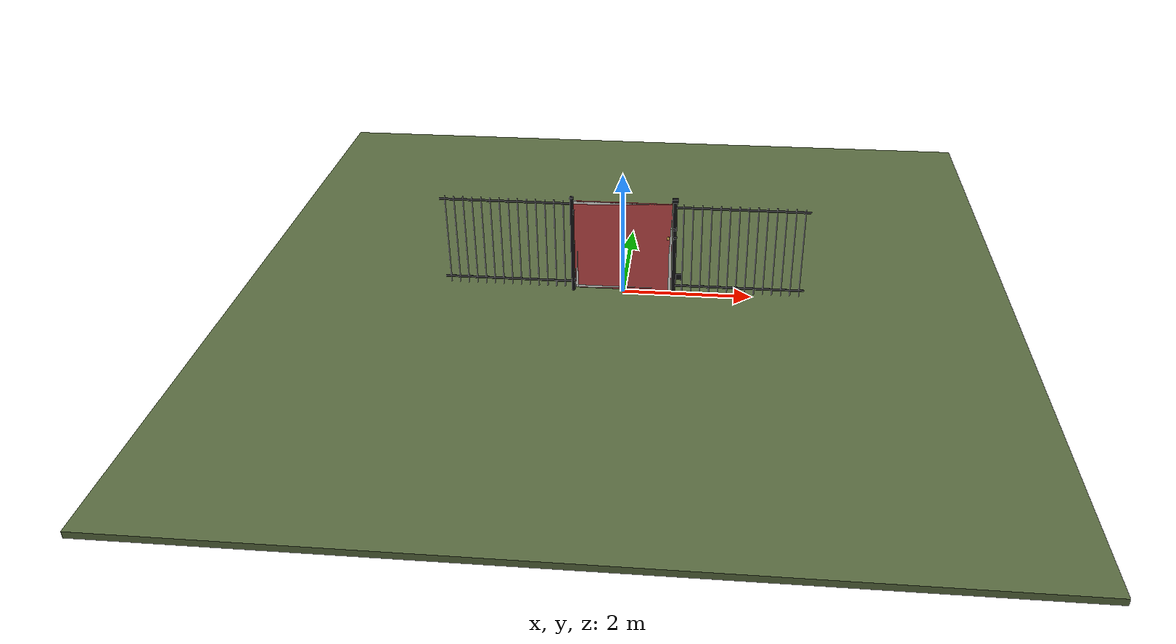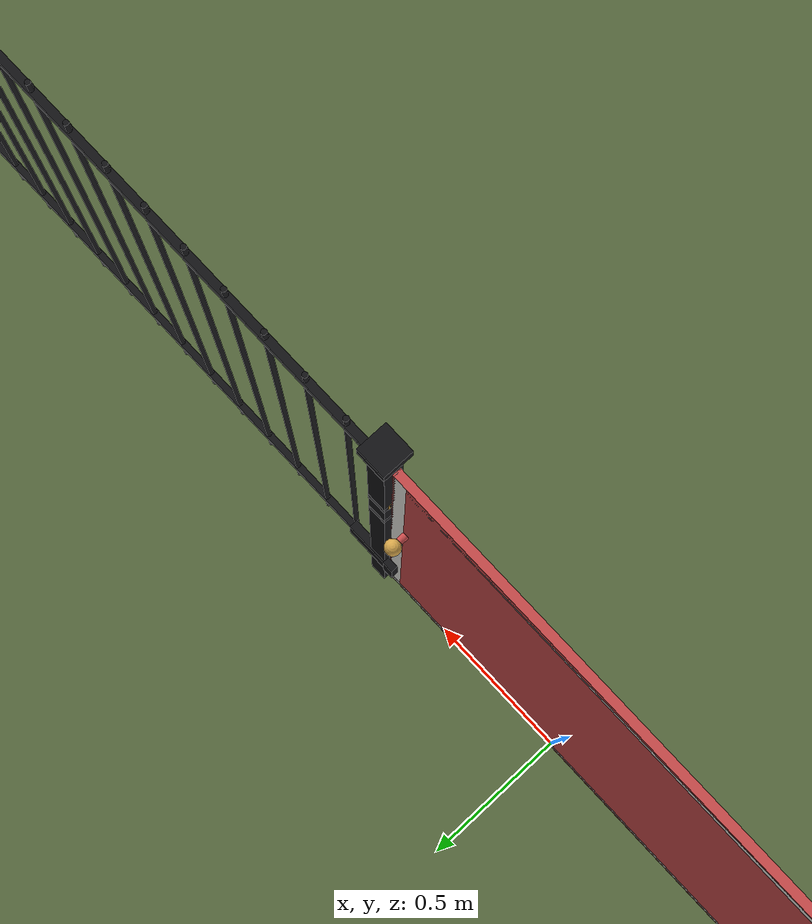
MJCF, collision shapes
<?xml version="1.0" ?>
<mujoco model="db0931_gate_swing_full">
  <compiler angle="radian" meshdir="../../hardware" texturedir="../../textures" autolimits="true" inertiafromgeom="false"/>
  <option timestep="0.002" integrator="implicitfast" cone="elliptic" impratio="10" noslip_iterations="3">
    <flag multiccd="enable"/>
  </option>
  <size memory="16M"/>
  <default>
    <geom condim="4" solref="0.005 1" solimp="0.95 0.99 0.001"/>
    <joint solreflimit="0.005 1" solimplimit="0.95 0.99 0.001"/>
    <tendon solreflimit="0.005 1"/>
    <equality solref="0.002 1"/>
  </default>
  <visual>
    <headlight ambient="0.4 0.4 0.4" diffuse="0.7 0.7 0.7" specular="0.2 0.2 0.2"/>
    <quality shadowsize="4096"/>
    <map znear="0.01" zfar="60"/>
  </visual>
  <asset>
    <mesh name="cyl_face_e9e5036966" file="cyl_face_e9e5036966.obj"/>
    <mesh name="knob_d1888f6f03" file="knob_d1888f6f03.obj"/>
    <mesh name="strap_hinge_118b895b75" file="strap_hinge_118b895b75.obj"/>
    <material name="mat_floor" rgba="0.35 0.42 0.25 1" specular="0.2" shininess="0.15" reflectance="0"/>
    <material name="mat_wall" rgba="0.78 0.76 0.7 1" specular="0.2" shininess="0.1" reflectance="0"/>
    <material name="mat_leaf" rgba="0.93 0.93 0.91 1" specular="0.23" shininess="0.3" reflectance="0.02"/>
    <material name="mat_hinge" rgba="0.65 0.66 0.68 1" specular="0.74" shininess="0.5" reflectance="0.36"/>
    <material name="mat_op_brass" rgba="0.85 0.66 0.3 1" specular="0.8" shininess="0.75" reflectance="0.4"/>
    <material name="mat_trim" rgba="0.85 0.66 0.3 1" specular="0.8" shininess="0.75" reflectance="0.4"/>
    <material name="mat_bolt" rgba="0.75 0.76 0.77 1" specular="0.8" shininess="0.65" reflectance="0.4"/>
    <material name="mat_deadbolt" rgba="0.85 0.66 0.3 1" specular="0.8" shininess="0.75" reflectance="0.4"/>
    <material name="mat_frame" rgba="0.08 0.08 0.09 1" specular="0.56" shininess="0.25" reflectance="0.24"/>
    <texture name="skybox" type="skybox" builtin="gradient" rgb1="0.6 0.7 0.85" rgb2="0.9 0.92 0.95" width="256" height="256"/>
  </asset>
  <worldbody>
    <light name="sun" pos="1.5 -2.5 4" dir="-0.3 0.5 -0.8" directional="true" diffuse="0.8 0.8 0.8" specular="0.3 0.3 0.3" castshadow="true"/>
    <light name="fill" pos="-1.5 2.5 3" dir="0.3 -0.5 -0.7" directional="true" diffuse="0.35 0.35 0.4" castshadow="false"/>
    <camera name="robot_view" pos="0 -2.05 1.334" xyaxes="1 0 0 0 0.26963 0.962964" fovy="52"/>
    <camera name="far_view" pos="0 2.05 1.334" xyaxes="-1 0 0 0 -0.26963 0.962964" fovy="52"/>
    <camera name="iso" pos="1.558 -1.722 1.662" xyaxes="0.741536 0.670913 0 -0.242917 0.268487 0.932151" fovy="46"/>
    <camera name="detail_handle" pos="0.872 -0.859 1.28" xyaxes="0.97561 0.219512 0 -0.070934 0.315262 0.94635" fovy="38"/>
    <geom name="floor" type="box" size="6 6 0.05" pos="0 0 -0.05" material="mat_floor" group="0" contype="1" conaffinity="1" friction="0.8 0.005 0.0001" density="2400"/>
    <geom name="hinge_pintle_0" type="cylinder" size="0.008 0.02" pos="-0.753 -0.05 0.174" material="mat_hinge" group="1" contype="0" conaffinity="0" density="7850"/>
    <geom name="hinge_pintle_1" type="cylinder" size="0.008 0.02" pos="-0.753 -0.05 1.374" material="mat_hinge" group="1" contype="0" conaffinity="0" density="7850"/>
    <geom name="leaf_deadbolt_strike_b" type="box" size="0.0155 0.003 0.0005" pos="0.7555 0 1.1215" quat="-0.5 -0.5 0.5 0.5" material="mat_deadbolt" group="1" contype="0" conaffinity="0" density="7800"/>
    <geom name="leaf_deadbolt_strike_l" type="box" size="0.003 0.0155 0.0005" pos="0.7555 0.0125 1.14" quat="-0.5 -0.5 0.5 0.5" material="mat_deadbolt" group="1" contype="0" conaffinity="0" density="7800"/>
    <geom name="leaf_deadbolt_strike_t" type="box" size="0.0155 0.003 0.0005" pos="0.7555 0 1.1585" quat="-0.5 -0.5 0.5 0.5" material="mat_deadbolt" group="1" contype="0" conaffinity="0" density="7800"/>
    <geom name="leaf_deadbolt_strike_r" type="box" size="0.003 0.0155 0.0005" pos="0.7555 -0.0125 1.14" quat="-0.5 -0.5 0.5 0.5" material="mat_deadbolt" group="1" contype="0" conaffinity="0" density="7800"/>
    <geom name="post_hinge" type="cylinder" size="0.03 0.8" pos="-0.786 0 0.8" material="mat_frame" group="0" contype="1" conaffinity="1" friction="0.6 0.005 0.0001" density="800"/>
    <geom name="post_hinge_cap" type="sphere" size="0.03" pos="-0.786 0 1.6" material="mat_frame" group="1" contype="0" conaffinity="0" density="800"/>
    <geom name="post_1000_wall_n" type="box" size="0.03 0.01175 0.015" pos="0.786 0.01825 1" material="mat_frame" group="0" contype="1" conaffinity="1" friction="0.6 0.005 0.0001" density="800"/>
    <geom name="post_1000_wall_p" type="box" size="0.03 0.008 0.015" pos="0.786 -0.0145 1" material="mat_frame" group="0" contype="1" conaffinity="1" friction="0.6 0.005 0.0001" density="800"/>
    <geom name="post_1000_ramp" type="box" size="0.03 0.016771 0.015" pos="0.790333 -0.024084 1" quat="0.973249 0 0 0.229753" material="mat_frame" group="0" contype="1" conaffinity="1" friction="0.12 0.005 0.0001" density="800"/>
    <geom name="post_1000_back" type="box" size="0.021 0.0065 0.015" pos="0.795 0 1" material="mat_frame" group="0" contype="1" conaffinity="1" friction="0.6 0.005 0.0001" density="800"/>
    <geom name="post_1140_wall_n" type="box" size="0.03 0.01025 0.0155" pos="0.786 0.01975 1.14" material="mat_frame" group="0" contype="1" conaffinity="1" friction="0.6 0.005 0.0001" density="800"/>
    <geom name="post_1140_wall_p" type="box" size="0.03 0.01025 0.0155" pos="0.786 -0.01975 1.14" material="mat_frame" group="0" contype="1" conaffinity="1" friction="0.6 0.005 0.0001" density="800"/>
    <geom name="post_1140_back" type="box" size="0.0153 0.0095 0.0155" pos="0.8007 0 1.14" material="mat_frame" group="0" contype="1" conaffinity="1" friction="0.6 0.005 0.0001" density="800"/>
    <geom name="post_latch_0" type="box" size="0.03 0.03 0.4925" pos="0.786 0 0.4925" material="mat_frame" group="0" contype="1" conaffinity="1" friction="0.6 0.005 0.0001" density="800"/>
    <geom name="post_latch_1" type="box" size="0.03 0.03 0.05475" pos="0.786 0 1.06975" material="mat_frame" group="0" contype="1" conaffinity="1" friction="0.6 0.005 0.0001" density="800"/>
    <geom name="post_latch_2" type="box" size="0.03 0.03 0.22225" pos="0.786 0 1.37775" material="mat_frame" group="0" contype="1" conaffinity="1" friction="0.6 0.005 0.0001" density="800"/>
    <geom name="post_latch_cap" type="box" size="0.045 0.045 0.02" pos="0.786 0 1.62" material="mat_frame" group="1" contype="0" conaffinity="0" density="800"/>
    <geom name="gate_stop" type="box" size="0.02 0.012 0.06" pos="0.736 0.0245 0.3" material="mat_frame" group="0" contype="1" conaffinity="1" friction="0.6 0.005 0.0001" density="800"/>
    <geom name="fence_bar_l_0" type="cylinder" size="0.008 0.75" pos="-0.916 0 0.8" material="mat_frame" group="0" contype="1" conaffinity="1" friction="0.6 0.005 0.0001" density="7850"/>
    <geom name="fence_bar_l_1" type="cylinder" size="0.008 0.75" pos="-1.056 0 0.8" material="mat_frame" group="0" contype="1" conaffinity="1" friction="0.6 0.005 0.0001" density="7850"/>
    <geom name="fence_bar_l_2" type="cylinder" size="0.008 0.75" pos="-1.196 0 0.8" material="mat_frame" group="0" contype="1" conaffinity="1" friction="0.6 0.005 0.0001" density="7850"/>
    <geom name="fence_bar_l_3" type="cylinder" size="0.008 0.75" pos="-1.336 0 0.8" material="mat_frame" group="0" contype="1" conaffinity="1" friction="0.6 0.005 0.0001" density="7850"/>
    <geom name="fence_bar_l_4" type="cylinder" size="0.008 0.75" pos="-1.476 0 0.8" material="mat_frame" group="0" contype="1" conaffinity="1" friction="0.6 0.005 0.0001" density="7850"/>
    <geom name="fence_bar_l_5" type="cylinder" size="0.008 0.75" pos="-1.616 0 0.8" material="mat_frame" group="0" contype="1" conaffinity="1" friction="0.6 0.005 0.0001" density="7850"/>
    <geom name="fence_bar_l_6" type="cylinder" size="0.008 0.75" pos="-1.756 0 0.8" material="mat_frame" group="0" contype="1" conaffinity="1" friction="0.6 0.005 0.0001" density="7850"/>
    <geom name="fence_bar_l_7" type="cylinder" size="0.008 0.75" pos="-1.896 0 0.8" material="mat_frame" group="0" contype="1" conaffinity="1" friction="0.6 0.005 0.0001" density="7850"/>
    <geom name="fence_bar_l_8" type="cylinder" size="0.008 0.75" pos="-2.036 0 0.8" material="mat_frame" group="0" contype="1" conaffinity="1" friction="0.6 0.005 0.0001" density="7850"/>
    <geom name="fence_bar_l_9" type="cylinder" size="0.008 0.75" pos="-2.176 0 0.8" material="mat_frame" group="0" contype="1" conaffinity="1" friction="0.6 0.005 0.0001" density="7850"/>
    <geom name="fence_bar_l_10" type="cylinder" size="0.008 0.75" pos="-2.316 0 0.8" material="mat_frame" group="0" contype="1" conaffinity="1" friction="0.6 0.005 0.0001" density="7850"/>
    <geom name="fence_bar_l_11" type="cylinder" size="0.008 0.75" pos="-2.456 0 0.8" material="mat_frame" group="0" contype="1" conaffinity="1" friction="0.6 0.005 0.0001" density="7850"/>
    <geom name="fence_bar_l_12" type="cylinder" size="0.008 0.75" pos="-2.596 0 0.8" material="mat_frame" group="0" contype="1" conaffinity="1" friction="0.6 0.005 0.0001" density="7850"/>
    <geom name="fence_bar_l_13" type="cylinder" size="0.008 0.75" pos="-2.736 0 0.8" material="mat_frame" group="0" contype="1" conaffinity="1" friction="0.6 0.005 0.0001" density="7850"/>
    <geom name="fence_rail_l" type="box" size="1 0.012 0.012" pos="-1.816 0 1.5" material="mat_frame" group="0" contype="1" conaffinity="1" friction="0.6 0.005 0.0001" density="7850"/>
    <geom name="fence_rail_b_l" type="box" size="1 0.012 0.012" pos="-1.816 0 0.15" material="mat_frame" group="0" contype="1" conaffinity="1" friction="0.6 0.005 0.0001" density="7850"/>
    <geom name="fence_bar_r_0" type="cylinder" size="0.008 0.75" pos="0.916 0 0.8" material="mat_frame" group="0" contype="1" conaffinity="1" friction="0.6 0.005 0.0001" density="7850"/>
    <geom name="fence_bar_r_1" type="cylinder" size="0.008 0.75" pos="1.056 0 0.8" material="mat_frame" group="0" contype="1" conaffinity="1" friction="0.6 0.005 0.0001" density="7850"/>
    <geom name="fence_bar_r_2" type="cylinder" size="0.008 0.75" pos="1.196 0 0.8" material="mat_frame" group="0" contype="1" conaffinity="1" friction="0.6 0.005 0.0001" density="7850"/>
    <geom name="fence_bar_r_3" type="cylinder" size="0.008 0.75" pos="1.336 0 0.8" material="mat_frame" group="0" contype="1" conaffinity="1" friction="0.6 0.005 0.0001" density="7850"/>
    <geom name="fence_bar_r_4" type="cylinder" size="0.008 0.75" pos="1.476 0 0.8" material="mat_frame" group="0" contype="1" conaffinity="1" friction="0.6 0.005 0.0001" density="7850"/>
    <geom name="fence_bar_r_5" type="cylinder" size="0.008 0.75" pos="1.616 0 0.8" material="mat_frame" group="0" contype="1" conaffinity="1" friction="0.6 0.005 0.0001" density="7850"/>
    <geom name="fence_bar_r_6" type="cylinder" size="0.008 0.75" pos="1.756 0 0.8" material="mat_frame" group="0" contype="1" conaffinity="1" friction="0.6 0.005 0.0001" density="7850"/>
    <geom name="fence_bar_r_7" type="cylinder" size="0.008 0.75" pos="1.896 0 0.8" material="mat_frame" group="0" contype="1" conaffinity="1" friction="0.6 0.005 0.0001" density="7850"/>
    <geom name="fence_bar_r_8" type="cylinder" size="0.008 0.75" pos="2.036 0 0.8" material="mat_frame" group="0" contype="1" conaffinity="1" friction="0.6 0.005 0.0001" density="7850"/>
    <geom name="fence_bar_r_9" type="cylinder" size="0.008 0.75" pos="2.176 0 0.8" material="mat_frame" group="0" contype="1" conaffinity="1" friction="0.6 0.005 0.0001" density="7850"/>
    <geom name="fence_bar_r_10" type="cylinder" size="0.008 0.75" pos="2.316 0 0.8" material="mat_frame" group="0" contype="1" conaffinity="1" friction="0.6 0.005 0.0001" density="7850"/>
    <geom name="fence_bar_r_11" type="cylinder" size="0.008 0.75" pos="2.456 0 0.8" material="mat_frame" group="0" contype="1" conaffinity="1" friction="0.6 0.005 0.0001" density="7850"/>
    <geom name="fence_bar_r_12" type="cylinder" size="0.008 0.75" pos="2.596 0 0.8" material="mat_frame" group="0" contype="1" conaffinity="1" friction="0.6 0.005 0.0001" density="7850"/>
    <geom name="fence_bar_r_13" type="cylinder" size="0.008 0.75" pos="2.736 0 0.8" material="mat_frame" group="0" contype="1" conaffinity="1" friction="0.6 0.005 0.0001" density="7850"/>
    <geom name="fence_rail_r" type="box" size="1 0.012 0.012" pos="1.816 0 1.5" material="mat_frame" group="0" contype="1" conaffinity="1" friction="0.6 0.005 0.0001" density="7850"/>
    <geom name="fence_rail_b_r" type="box" size="1 0.012 0.012" pos="1.816 0 0.15" material="mat_frame" group="0" contype="1" conaffinity="1" friction="0.6 0.005 0.0001" density="7850"/>
    <geom name="hinge_pintle_0_strap_0" type="box" size="0.0064 0.0065 0.016" pos="-0.753 -0.036 0.174" material="mat_hinge" group="1" contype="0" conaffinity="0" density="7850"/>
    <geom name="hinge_pintle_1_strap_0" type="box" size="0.0064 0.0065 0.016" pos="-0.753 -0.036 1.374" material="mat_hinge" group="1" contype="0" conaffinity="0" density="7850"/>
    <geom name="gate_stop_strap_0" type="box" size="0.0765 0.01505 0.048" pos="0.832 0.01905 0.3" material="mat_frame" group="1" contype="0" conaffinity="0" density="7850"/>
    <site name="approach_point" pos="0 -1.5 0" quat="1 0 0 0" size="0.05" rgba="0.2 0.9 0.2 0.5" group="4"/>
    <site name="goal_point" pos="0 1.5 0" quat="1 0 0 0" size="0.05" rgba="0.2 0.9 0.2 0.5" group="4"/>
    <site name="door_plane_center" pos="0 0 0.76" quat="1 0 0 0" size="0.02" rgba="0.2 0.9 0.2 0.5" group="4"/>
    <body name="leaf" pos="-0.756 0 0">
      <inertial pos="0.718425 -0.001254 0.800611" mass="67.174408" quat="0.482495 0.48096 0.518367 -0.516887" diaginertia="13.004862996 13.4223265 26.41756311"/>
      <joint name="leaf_hinge" type="hinge" axis="0 0 -1" pos="0.003 -0.05 0" limited="true" range="0 1.745329" damping="1.421431" frictionloss="13.901214" armature="0.02"/>
      <geom name="leaf_slab_col" type="box" size="0.75 0.0125 0.75" pos="0.753 0 0.8" material="mat_leaf" group="3" contype="1" conaffinity="1" rgba="0.8 0.3 0.3 0.25" friction="0.45 0.005 0.0001" density="1"/>
      <geom name="leaf_rail_b" type="box" size="0.75 0.0125 0.0225" pos="0.753 0 0.0725" material="mat_leaf" group="1" contype="0" conaffinity="0" density="1"/>
      <geom name="leaf_rail_t" type="box" size="0.75 0.0125 0.0225" pos="0.753 0 1.5275" material="mat_leaf" group="1" contype="0" conaffinity="0" density="1"/>
      <geom name="leaf_stile_h" type="box" size="0.0225 0.0125 0.75" pos="0.0255 0 0.8" material="mat_leaf" group="1" contype="0" conaffinity="0" density="1"/>
      <geom name="leaf_stile_l" type="box" size="0.0225 0.0125 0.75" pos="1.4805 0 0.8" material="mat_leaf" group="1" contype="0" conaffinity="0" density="1"/>
      <geom name="leaf_bar_0" type="cylinder" size="0.0095 0.705" pos="0.112091 0 0.8" material="mat_leaf" group="1" contype="0" conaffinity="0" density="1"/>
      <geom name="leaf_bar_1" type="cylinder" size="0.0095 0.705" pos="0.240273 0 0.8" material="mat_leaf" group="1" contype="0" conaffinity="0" density="1"/>
      <geom name="leaf_bar_2" type="cylinder" size="0.0095 0.705" pos="0.368455 0 0.8" material="mat_leaf" group="1" contype="0" conaffinity="0" density="1"/>
      <geom name="leaf_bar_3" type="cylinder" size="0.0095 0.705" pos="0.496636 0 0.8" material="mat_leaf" group="1" contype="0" conaffinity="0" density="1"/>
      <geom name="leaf_bar_4" type="cylinder" size="0.0095 0.705" pos="0.624818 0 0.8" material="mat_leaf" group="1" contype="0" conaffinity="0" density="1"/>
      <geom name="leaf_bar_5" type="cylinder" size="0.0095 0.705" pos="0.753 0 0.8" material="mat_leaf" group="1" contype="0" conaffinity="0" density="1"/>
      <geom name="leaf_bar_6" type="cylinder" size="0.0095 0.705" pos="0.881182 0 0.8" material="mat_leaf" group="1" contype="0" conaffinity="0" density="1"/>
      <geom name="leaf_bar_7" type="cylinder" size="0.0095 0.705" pos="1.009364 0 0.8" material="mat_leaf" group="1" contype="0" conaffinity="0" density="1"/>
      <geom name="leaf_bar_8" type="cylinder" size="0.0095 0.705" pos="1.137545 0 0.8" material="mat_leaf" group="1" contype="0" conaffinity="0" density="1"/>
      <geom name="leaf_bar_9" type="cylinder" size="0.0095 0.705" pos="1.265727 0 0.8" material="mat_leaf" group="1" contype="0" conaffinity="0" density="1"/>
      <geom name="leaf_bar_10" type="cylinder" size="0.0095 0.705" pos="1.393909 0 0.8" material="mat_leaf" group="1" contype="0" conaffinity="0" density="1"/>
      <geom name="hinge_strap_0" type="mesh" mesh="strap_hinge_118b895b75" pos="0.003 -0.0155 0.2" material="mat_hinge" group="1" contype="0" conaffinity="0" density="7850"/>
      <geom name="hinge_strap_eye_0" type="cylinder" size="0.011 0.012" pos="0.003 -0.05 0.2" material="mat_hinge" group="1" contype="0" conaffinity="0" density="7850"/>
      <geom name="hinge_strap_neck_0" type="box" size="0.012 0.02125 0.006" pos="0.003 -0.03275 0.2" material="mat_hinge" group="1" contype="0" conaffinity="0" density="7850"/>
      <geom name="hinge_strap_1" type="mesh" mesh="strap_hinge_118b895b75" pos="0.003 -0.0155 1.4" material="mat_hinge" group="1" contype="0" conaffinity="0" density="7850"/>
      <geom name="hinge_strap_eye_1" type="cylinder" size="0.011 0.012" pos="0.003 -0.05 1.4" material="mat_hinge" group="1" contype="0" conaffinity="0" density="7850"/>
      <geom name="hinge_strap_neck_1" type="box" size="0.012 0.02125 0.006" pos="0.003 -0.03275 1.4" material="mat_hinge" group="1" contype="0" conaffinity="0" density="7850"/>
      <geom name="leaf_latch_bolt_faceplate" type="box" size="0.0006 0.0105 0.025" pos="1.5024 0 1" material="mat_bolt" group="1" contype="0" conaffinity="0" density="8500"/>
      <geom name="leaf_deadbolt_faceplate" type="box" size="0.0006 0.0105 0.0245" pos="1.5024 0 1.14" material="mat_deadbolt" group="1" contype="0" conaffinity="0" density="8500"/>
      <geom name="leaf_deadbolt_cylinder_face" type="mesh" mesh="cyl_face_e9e5036966" pos="1.438 -0.0125 1.14" quat="0.707107 0.707107 0 0" material="mat_deadbolt" group="1" contype="0" conaffinity="0" density="7100"/>
      <site name="leaf_edge_mid" pos="1.503 0 0.75" quat="1 0 0 0" size="0.02" rgba="0.2 0.9 0.2 0.5" group="4"/>
      <body name="leaf_handle" pos="1.448 0 1">
        <inertial pos="0 0 0" mass="1.135083" quat="0 0.707107 0.707107 0" diaginertia="0.00031221 0.003140271 0.003140271"/>
        <joint name="leaf_handle_hinge" type="hinge" axis="0 -1 0" limited="true" range="0 0.87" damping="0.143612" frictionloss="0.038" stiffness="0.5" springref="-0.5" armature="0.01"/>
        <geom name="leaf_handle_spindle" type="cylinder" size="0.006 0.0205" pos="0 0 0" quat="0.707107 -0.707107 0 0" material="mat_op_brass" group="1" contype="0" conaffinity="0" density="7850"/>
        <geom name="leaf_handle_knob_n" type="mesh" mesh="knob_d1888f6f03" pos="0 -0.0125 0" quat="0.707107 0.707107 0 0" material="mat_op_brass" group="1" contype="0" conaffinity="0" density="3000"/>
        <geom name="leaf_handle_knob_col_n" type="sphere" size="0.0243" pos="0 -0.059 0" material="mat_op_brass" group="0" contype="1" conaffinity="1" friction="0.9 0.01 0.0001" density="3000"/>
        <geom name="leaf_handle_knob_neck_n" type="cylinder" size="0.011 0.012" pos="0 -0.0245 0" quat="0.707107 -0.707107 0 0" material="mat_op_brass" group="3" contype="1" conaffinity="1" rgba="0.8 0.3 0.3 0.25" friction="0.6 0.005 0.0001" density="3000"/>
        <geom name="leaf_handle_knob_p" type="mesh" mesh="knob_d1888f6f03" pos="0 0.0125 0" quat="-0.707107 0.707107 0 0" material="mat_op_brass" group="1" contype="0" conaffinity="0" density="3000"/>
        <geom name="leaf_handle_knob_col_p" type="sphere" size="0.0243" pos="0 0.059 0" material="mat_op_brass" group="0" contype="1" conaffinity="1" friction="0.9 0.01 0.0001" density="3000"/>
        <geom name="leaf_handle_knob_neck_p" type="cylinder" size="0.011 0.012" pos="0 0.0245 0" quat="0.707107 -0.707107 0 0" material="mat_op_brass" group="3" contype="1" conaffinity="1" rgba="0.8 0.3 0.3 0.25" friction="0.6 0.005 0.0001" density="3000"/>
        <site name="leaf_handle_grip_n" pos="0 -0.059 0" quat="1 0 0 0" size="0.012" rgba="0.2 0.9 0.2 0.5" group="4"/>
        <site name="leaf_handle_grip_p" pos="0 0.059 0" quat="1 0 0 0" size="0.012" rgba="0.2 0.9 0.2 0.5" group="4"/>
      </body>
      <body name="leaf_latch_bolt" pos="1.503 0 1">
        <inertial pos="-0.008 0 0" mass="0.027149" quat="0 0 0.707107 0.707107" diaginertia="0.000000328 0.000003943 0.000003943"/>
        <joint name="leaf_latch_bolt_slide" type="slide" axis="-1 0 0" limited="true" range="0 0.014" damping="2" frictionloss="0.3" stiffness="400" springref="-0.01" armature="0.1"/>
        <geom name="leaf_latch_bolt_capsule" type="capsule" size="0.005 0.017" pos="-0.008 0 0" quat="0.707107 0 0.707107 0" material="mat_bolt" group="0" contype="1" conaffinity="1" friction="0.2 0.005 0.0001" density="8500"/>
      </body>
      <body name="leaf_deadbolt" pos="1.503 0 1.14">
        <inertial pos="-0.0277 0 0" mass="0.18836" quat="0 0 0.707107 0.707107" diaginertia="0.000013829 0.000052194 0.000057986"/>
        <geom name="leaf_deadbolt_box" type="box" size="0.0277 0.008 0.0125" pos="-0.0277 0 0" material="mat_deadbolt" group="0" contype="1" conaffinity="1" friction="0.3 0.005 0.0001" density="8500"/>
      </body>
    </body>
  </worldbody>
  <tendon>
    <fixed name="leaf_latch_bolt_coupling" limited="true" range="0 10">
      <joint joint="leaf_latch_bolt_slide" coef="1"/>
      <joint joint="leaf_handle_hinge" coef="-0.017284"/>
    </fixed>
  </tendon>
  <sensor>
    <jointpos name="leaf_hinge_pos" joint="leaf_hinge"/>
    <jointvel name="leaf_hinge_vel" joint="leaf_hinge"/>
    <jointpos name="leaf_handle_hinge_pos" joint="leaf_handle_hinge"/>
    <jointvel name="leaf_handle_hinge_vel" joint="leaf_handle_hinge"/>
    <jointpos name="leaf_latch_bolt_slide_pos" joint="leaf_latch_bolt_slide"/>
    <jointvel name="leaf_latch_bolt_slide_vel" joint="leaf_latch_bolt_slide"/>
  </sensor>
</mujoco>
